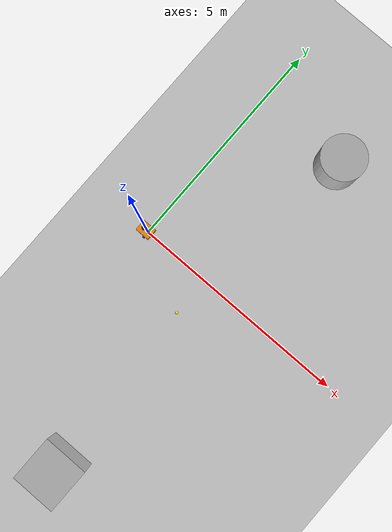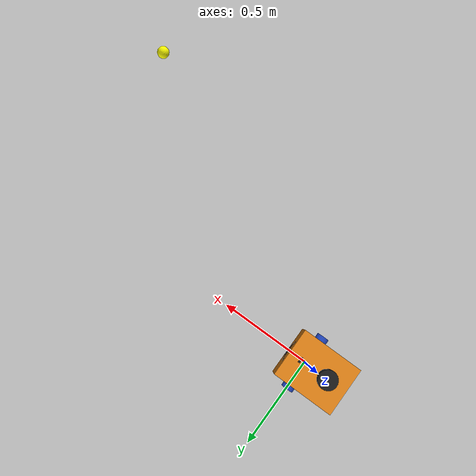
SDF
<sdf version='1.9'>
  <world name='empty'>
    <physics name='1ms' type='ignored'>
      <max_step_size>0.001</max_step_size>
      <real_time_factor>1</real_time_factor>
      <real_time_update_rate>1000</real_time_update_rate>
    </physics>
    <plugin name='gz::sim::systems::Physics' filename='gz-sim-physics-system'/>
    <plugin name='gz::sim::systems::UserCommands' filename='gz-sim-user-commands-system'/>
    <plugin name='gz::sim::systems::SceneBroadcaster' filename='gz-sim-scene-broadcaster-system'/>
    <plugin name='gz::sim::systems::Sensors' filename='gz-sim-sensors-system'>
      <render_engine>ogre2</render_engine>
    </plugin>
    <plugin name='gz::sim::systems::Contact' filename='gz-sim-contact-system'/>
    <gravity>0 0 -9.8</gravity>
    <magnetic_field>6e-06 2.3e-05 -4.2e-05</magnetic_field>
    <atmosphere type='adiabatic'/>
    <scene>
      <ambient>0.4 0.4 0.4 1</ambient>
      <background>0.7 0.7 0.7 1</background>
      <shadows>true</shadows>
    </scene>
    <model name='ground_plane'>
      <static>true</static>
      <link name='link'>
        <collision name='collision'>
          <geometry>
            <plane>
              <normal>0 0 1</normal>
              <size>100 100</size>
            </plane>
          </geometry>
          <surface>
            <friction>
              <ode/>
            </friction>
            <bounce/>
            <contact/>
          </surface>
        </collision>
        <visual name='visual'>
          <geometry>
            <plane>
              <normal>0 0 1</normal>
              <size>100 100</size>
            </plane>
          </geometry>
          <material>
            <ambient>0.8 0.8 0.8 1</ambient>
            <diffuse>0.8 0.8 0.8 1</diffuse>
            <specular>0.8 0.8 0.8 1</specular>
          </material>
        </visual>
        <pose>0 0 0 0 -0 0</pose>
        <inertial>
          <pose>0 0 0 0 -0 0</pose>
          <mass>1</mass>
          <inertia>
            <ixx>1</ixx>
            <ixy>0</ixy>
            <ixz>0</ixz>
            <iyy>1</iyy>
            <iyz>0</iyz>
            <izz>1</izz>
          </inertia>
        </inertial>
        <enable_wind>false</enable_wind>
      </link>
      <pose>0 0 0 0 -0 0</pose>
      <self_collide>false</self_collide>
    </model>
    <model name='box'>
      <pose>1.80292 -4.94023 0.5 -0 0 0</pose>
      <link name='box_link'>
        <inertial>
          <inertia>
            <ixx>0.16666</ixx>
            <ixy>0</ixy>
            <ixz>0</ixz>
            <iyy>0.16666</iyy>
            <iyz>0</iyz>
            <izz>0.16666</izz>
          </inertia>
          <mass>1</mass>
          <pose>0 0 0 0 -0 0</pose>
        </inertial>
        <collision name='box_collision'>
          <geometry>
            <box>
              <size>1 1 1</size>
            </box>
          </geometry>
          <surface>
            <friction>
              <ode/>
            </friction>
            <bounce/>
            <contact/>
          </surface>
        </collision>
        <visual name='box_visual'>
          <geometry>
            <box>
              <size>1 1 1</size>
            </box>
          </geometry>
          <material>
            <ambient>0.3 0.3 0.3 1</ambient>
            <diffuse>0.7 0.7 0.7 1</diffuse>
            <specular>1 1 1 1</specular>
          </material>
        </visual>
        <pose>0 0 0 0 -0 0</pose>
        <enable_wind>false</enable_wind>
      </link>
      <static>false</static>
      <self_collide>false</self_collide>
    </model>
    <model name='cylinder'>
      <pose>2.12782 3.70295 0.499999 -0 -0 0</pose>
      <link name='cylinder_link'>
        <inertial>
          <inertia>
            <ixx>0.14580000000000001</ixx>
            <ixy>0</ixy>
            <ixz>0</ixz>
            <iyy>0.14580000000000001</iyy>
            <iyz>0</iyz>
            <izz>0.125</izz>
          </inertia>
          <mass>1</mass>
          <pose>0 0 0 0 -0 0</pose>
        </inertial>
        <collision name='cylinder_collision'>
          <geometry>
            <cylinder>
              <radius>0.5</radius>
              <length>1</length>
            </cylinder>
          </geometry>
          <surface>
            <friction>
              <ode/>
            </friction>
            <bounce/>
            <contact/>
          </surface>
        </collision>
        <visual name='cylinder_visual'>
          <geometry>
            <cylinder>
              <radius>0.5</radius>
              <length>1</length>
            </cylinder>
          </geometry>
          <material>
            <ambient>0.3 0.3 0.3 1</ambient>
            <diffuse>0.7 0.7 0.7 1</diffuse>
            <specular>1 1 1 1</specular>
          </material>
        </visual>
        <pose>0 0 0 0 -0 0</pose>
        <enable_wind>false</enable_wind>
      </link>
      <static>false</static>
      <self_collide>false</self_collide>
    </model>
    <model name='sphere'>
      <pose>1.58291 -0.900811 0.033 0 -0 0</pose>
      <link name='sphere_link'>
        <inertial>
          <inertia>
            <ixx>0.10000000000000001</ixx>
            <ixy>0</ixy>
            <ixz>0</ixz>
            <iyy>0.10000000000000001</iyy>
            <iyz>0</iyz>
            <izz>0.10000000000000001</izz>
          </inertia>
          <mass>1</mass>
          <pose>0 0 0 0 -0 0</pose>
        </inertial>
        <collision name='sphere_collision'>
          <geometry>
            <sphere>
              <radius>0.033000000000000002</radius>
            </sphere>
          </geometry>
          <surface>
            <friction>
              <ode/>
            </friction>
            <bounce/>
            <contact/>
          </surface>
        </collision>
        <visual name='sphere_visual'>
          <geometry>
            <sphere>
              <radius>0.033000000000000002</radius>
            </sphere>
          </geometry>
          <material>
            <ambient>0.8 0.8 0.1 1</ambient>
            <diffuse>1.0 1.0 0.0 1</diffuse>
            <specular>0.5 0.5 0.5 1</specular>
          </material>
        </visual>
        <pose>0 0 0 0 -0 0</pose>
        <enable_wind>false</enable_wind>
      </link>
      <static>false</static>
      <self_collide>false</self_collide>
    </model>
    <model name='my_bot'>
      <link name='base_link'>
        <inertial>
          <pose>-0.067475 0 0.081098 0 -0 0</pose>
          <mass>0.60999999999999999</mass>
          <inertia>
            <ixx>0.0056100300000000002</ixx>
            <ixy>0</ixy>
            <ixz>0.00045381099999999998</ixz>
            <iyy>0.0076034800000000001</iyy>
            <iyz>0</iyz>
            <izz>0.0079709299999999993</izz>
          </inertia>
        </inertial>
        <collision name='base_link_fixed_joint_lump__chassis_collision'>
          <pose>-0.0585 0 0.059 0 0 0</pose>
          <geometry>
            <box>
              <size>0.335 0.265 0.138</size>
            </box>
          </geometry>
          <surface>
            <contact>
              <ode/>
            </contact>
            <friction>
              <ode/>
            </friction>
            <bounce/>
          </surface>
        </collision>
        <collision name='base_link_fixed_joint_lump__caster_wheel_collision_1'>
          <pose>-0.151 0 -0.023 0 0 0</pose>
          <geometry>
            <sphere>
              <radius>0.01</radius>
            </sphere>
          </geometry>
          <surface>
            <contact>
              <ode/>
            </contact>
            <friction>
              <ode>
                <mu>0.001</mu>
                <mu2>0.001</mu2>
              </ode>
            </friction>
            <bounce/>
          </surface>
        </collision>
        <collision name='base_link_fixed_joint_lump__laser_frame_collision_2'>
          <pose>-0.104 0 0.202 0 0 0</pose>
          <geometry>
            <cylinder>
              <length>0.040000000000000001</length>
              <radius>0.050000000000000003</radius>
            </cylinder>
          </geometry>
          <surface>
            <contact>
              <ode/>
            </contact>
            <friction>
              <ode/>
            </friction>
            <bounce/>
          </surface>
        </collision>
        <visual name='base_link_fixed_joint_lump__chassis_visual'>
          <pose>-0.0585 0 0.059 0 0 0</pose>
          <geometry>
            <box>
              <size>0.335 0.265 0.138</size>
            </box>
          </geometry>
          <material>
            <script>
              <name>Gazebo/Orange</name>
              <uri>file://media/materials/scripts/gazebo.material</uri>
            </script>
            <diffuse>1 0.375 0.125 1</diffuse>
            <ambient>1 0.375 0.125 1</ambient>
          </material>
        </visual>
        <visual name='base_link_fixed_joint_lump__camera_link_visual_1'>
          <pose>0.05000000000000002 0 0.171 0 0.18 0</pose>
          <geometry>
            <box>
              <size>0.01 0.03 0.03</size>
            </box>
          </geometry>
          <material>
            <script>
              <name>Gazebo/Black</name>
              <uri>file://media/materials/scripts/gazebo.material</uri>
            </script>
            <diffuse>0 0 0 1</diffuse>
            <ambient>0 0 0 1</ambient>
          </material>
        </visual>
        <visual name='base_link_fixed_joint_lump__camera_link_visual_2'>
          <pose>0.04104852132870881 0 0.1218078153605939 0 0.18 0</pose>
          <geometry>
            <cylinder>
              <length>0.10000000000000001</length>
              <radius>0.002</radius>
            </cylinder>
          </geometry>
          <material>
            <script>
              <name>Gazebo/Black</name>
              <uri>file://media/materials/scripts/gazebo.material</uri>
            </script>
            <diffuse>0 0 0 1</diffuse>
            <ambient>0 0 0 1</ambient>
          </material>
        </visual>
        <visual name='base_link_fixed_joint_lump__caster_wheel_visual_3'>
          <pose>-0.151 0 -0.023 0 0 0</pose>
          <geometry>
            <sphere>
              <radius>0.01</radius>
            </sphere>
          </geometry>
          <material>
            <script>
              <name>Gazebo/White</name>
              <uri>file://media/materials/scripts/gazebo.material</uri>
            </script>
            <diffuse>1 1 1 1</diffuse>
            <ambient>1 1 1 1</ambient>
          </material>
        </visual>
        <visual name='base_link_fixed_joint_lump__face_link_visual_4'>
          <pose>0.109 0.05 0.06900000000000001 0 1.570796326794897 0</pose>
          <geometry>
            <cylinder>
              <length>0.002</length>
              <radius>0.01</radius>
            </cylinder>
          </geometry>
          <material>
            <script>
              <name>Gazebo/Black</name>
              <uri>file://media/materials/scripts/gazebo.material</uri>
            </script>
            <diffuse>0 0 0 1</diffuse>
            <ambient>0 0 0 1</ambient>
          </material>
        </visual>
        <visual name='base_link_fixed_joint_lump__face_link_visual_5'>
          <pose>0.109 -0.05 0.06900000000000001 0 1.570796326794897 0</pose>
          <geometry>
            <cylinder>
              <length>0.002</length>
              <radius>0.01</radius>
            </cylinder>
          </geometry>
          <material>
            <script>
              <name>Gazebo/Black</name>
              <uri>file://media/materials/scripts/gazebo.material</uri>
            </script>
            <diffuse>0 0 0 1</diffuse>
            <ambient>0 0 0 1</ambient>
          </material>
        </visual>
        <visual name='base_link_fixed_joint_lump__face_link_visual_6'>
          <pose>0.098 0 0.059 0 1.499999999999999 0</pose>
          <geometry>
            <cylinder>
              <length>0.02</length>
              <radius>0.050000000000000003</radius>
            </cylinder>
          </geometry>
          <material>
            <script>
              <name>Gazebo/Black</name>
              <uri>file://media/materials/scripts/gazebo.material</uri>
            </script>
            <diffuse>0 0 0 1</diffuse>
            <ambient>0 0 0 1</ambient>
          </material>
        </visual>
        <visual name='base_link_fixed_joint_lump__laser_frame_visual_7'>
          <pose>-0.104 0 0.202 0 0 0</pose>
          <geometry>
            <cylinder>
              <length>0.040000000000000001</length>
              <radius>0.050000000000000003</radius>
            </cylinder>
          </geometry>
          <material>
            <script>
              <name>Gazebo/Black</name>
              <uri>file://media/materials/scripts/gazebo.material</uri>
            </script>
            <diffuse>0 0 0 1</diffuse>
            <ambient>0 0 0 1</ambient>
          </material>
        </visual>
        <visual name='base_link_fixed_joint_lump__laser_frame_visual_8'>
          <pose>-0.104 0 0.152 0 0 0</pose>
          <geometry>
            <cylinder>
              <length>0.10000000000000001</length>
              <radius>0.01</radius>
            </cylinder>
          </geometry>
          <material>
            <script>
              <name>Gazebo/Black</name>
              <uri>file://media/materials/scripts/gazebo.material</uri>
            </script>
            <diffuse>0 0 0 1</diffuse>
            <ambient>0 0 0 1</ambient>
          </material>
        </visual>
        <sensor name='camera' type='camera'>
          <pose>0.05 0 0.171 0 0.18 0</pose>
          <topic>camera/image_raw</topic>
          <update_rate>10</update_rate>
          <enable_metrics>false</enable_metrics>
          <camera name='__default__'>
            <pose>0 0 0 0 -0 0</pose>
            <horizontal_fov>1.089</horizontal_fov>
            <image>
              <width>640</width>
              <height>480</height>
              <format>RGB_INT8</format>
              <anti_aliasing>4</anti_aliasing>
            </image>
            <camera_info_topic>camera/camera_info</camera_info_topic>
            <trigger_topic></trigger_topic>
            <triggered>false</triggered>
            <clip>
              <near>0.050000000000000003</near>
              <far>8</far>
            </clip>
            <save enabled='false'>
              <path>__default__</path>
            </save>
            <visibility_mask>4294967295</visibility_mask>
            <noise>
              <type>none</type>
              <mean>0</mean>
              <stddev>0</stddev>
            </noise>
            <distortion>
              <k1>0</k1>
              <k2>0</k2>
              <k3>0</k3>
              <p1>0</p1>
              <p2>0</p2>
              <center>0.5 0.5</center>
            </distortion>
            <lens>
              <type>stereographic</type>
              <scale_to_hfov>true</scale_to_hfov>
              <cutoff_angle>1.5708</cutoff_angle>
              <env_texture_size>256</env_texture_size>
            </lens>
            <optical_frame_id></optical_frame_id>
          </camera>
        </sensor>
        <sensor name='laser' type='gpu_lidar'>
          <pose>-0.104 0 0.202 0 -0 0</pose>
          <topic>scan</topic>
          <update_rate>10</update_rate>
          <enable_metrics>false</enable_metrics>
          <lidar>
            <scan>
              <horizontal>
                <samples>360</samples>
                <resolution>1</resolution>
                <min_angle>-3.1400000000000001</min_angle>
                <max_angle>3.1400000000000001</max_angle>
              </horizontal>
              <vertical>
                <samples>1</samples>
                <min_angle>0</min_angle>
                <max_angle>0</max_angle>
                <resolution>1</resolution>
              </vertical>
            </scan>
            <range>
              <min>0.29999999999999999</min>
              <max>12</max>
              <resolution>0</resolution>
            </range>
            <noise>
              <type>none</type>
              <mean>0</mean>
              <stddev>0</stddev>
            </noise>
            <visibility_mask>4294967295</visibility_mask>
          </lidar>
        </sensor>
        <pose>0 0 0 0 -0 0</pose>
        <enable_wind>false</enable_wind>
      </link>
      <joint name='left_wheel_joint' type='revolute'>
        <pose>0 -0 0 0 -0 0</pose>
        <parent>base_link</parent>
        <child>left_wheel</child>
        <axis>
          <xyz>0 0 1</xyz>
          <limit>
            <lower>-10000000000000000</lower>
            <upper>10000000000000000</upper>
            <effort>inf</effort>
            <velocity>inf</velocity>
            <stiffness>100000000</stiffness>
            <dissipation>1</dissipation>
          </limit>
          <dynamics>
            <spring_reference>0</spring_reference>
            <spring_stiffness>0</spring_stiffness>
            <damping>0</damping>
            <friction>0</friction>
          </dynamics>
        </axis>
      </joint>
      <link name='left_wheel'>
        <pose>0 0.1485 0 -1.5708 -0 -0</pose>
        <inertial>
          <pose>0 0 0 0 -0 0</pose>
          <mass>0.050000000000000003</mass>
          <inertia>
            <ixx>1.6429199999999998e-05</ixx>
            <ixy>0</ixy>
            <ixz>0</ixz>
            <iyy>1.6429199999999998e-05</iyy>
            <iyz>0</iyz>
            <izz>2.7225000000000001e-05</izz>
          </inertia>
        </inertial>
        <collision name='left_wheel_collision'>
          <pose>0 0 0 0 0 0</pose>
          <geometry>
            <sphere>
              <radius>0.033000000000000002</radius>
            </sphere>
          </geometry>
          <surface>
            <contact>
              <ode/>
            </contact>
            <friction>
              <ode/>
            </friction>
            <bounce/>
          </surface>
        </collision>
        <visual name='left_wheel_visual'>
          <pose>0 0 0 0 0 0</pose>
          <geometry>
            <cylinder>
              <length>0.025999999999999999</length>
              <radius>0.033000000000000002</radius>
            </cylinder>
          </geometry>
          <material>
            <script>
              <name>Gazebo/Blue</name>
              <uri>file://media/materials/scripts/gazebo.material</uri>
            </script>
            <diffuse>0.25 0.25 1 1</diffuse>
            <ambient>0.25 0.25 1 1</ambient>
          </material>
        </visual>
        <enable_wind>false</enable_wind>
      </link>
      <joint name='right_wheel_joint' type='revolute'>
        <pose>0 0 0 0 -0 0</pose>
        <parent>base_link</parent>
        <child>right_wheel</child>
        <axis>
          <xyz>0 0 -1</xyz>
          <limit>
            <lower>-10000000000000000</lower>
            <upper>10000000000000000</upper>
            <effort>inf</effort>
            <velocity>inf</velocity>
            <stiffness>100000000</stiffness>
            <dissipation>1</dissipation>
          </limit>
          <dynamics>
            <spring_reference>0</spring_reference>
            <spring_stiffness>0</spring_stiffness>
            <damping>0</damping>
            <friction>0</friction>
          </dynamics>
        </axis>
      </joint>
      <link name='right_wheel'>
        <pose>0 -0.1485 0 1.5708 -0 0</pose>
        <inertial>
          <pose>0 0 0 0 -0 0</pose>
          <mass>0.050000000000000003</mass>
          <inertia>
            <ixx>1.6429199999999998e-05</ixx>
            <ixy>0</ixy>
            <ixz>0</ixz>
            <iyy>1.6429199999999998e-05</iyy>
            <iyz>0</iyz>
            <izz>2.7225000000000001e-05</izz>
          </inertia>
        </inertial>
        <collision name='right_wheel_collision'>
          <pose>0 0 0 0 0 0</pose>
          <geometry>
            <sphere>
              <radius>0.033000000000000002</radius>
            </sphere>
          </geometry>
          <surface>
            <contact>
              <ode/>
            </contact>
            <friction>
              <ode/>
            </friction>
            <bounce/>
          </surface>
        </collision>
        <visual name='right_wheel_visual'>
          <pose>0 0 0 0 0 0</pose>
          <geometry>
            <cylinder>
              <length>0.025999999999999999</length>
              <radius>0.033000000000000002</radius>
            </cylinder>
          </geometry>
          <material>
            <script>
              <name>Gazebo/Blue</name>
              <uri>file://media/materials/scripts/gazebo.material</uri>
            </script>
            <diffuse>0.25 0.25 1 1</diffuse>
            <ambient>0.25 0.25 1 1</ambient>
          </material>
        </visual>
        <enable_wind>false</enable_wind>
      </link>
      <plugin name='gz_ros2_control::GazeboSimROS2ControlPlugin' filename='libgz_ros2_control-system.so'>
        <parameters>/home/engenheiro/Desktop/robot_ws/install/articubot_one/share/articubot_one/config/my_controllers.yaml</parameters>
        <parameters>/home/engenheiro/Desktop/robot_ws/install/articubot_one/share/articubot_one/config/gaz_ros2_ctl_use_sim.yaml</parameters>
      </plugin>
      <frame name='base_footprint_joint' attached_to='base_link'>
        <pose>0 0 0 0 -0 0</pose>
      </frame>
      <frame name='base_footprint' attached_to='base_footprint_joint'/>
      <frame name='camera_optical_joint' attached_to='camera_link'>
        <pose>0 0 0 -1.5708 -0 -1.5708</pose>
      </frame>
      <frame name='camera_link_optical' attached_to='camera_optical_joint'/>
      <frame name='camera_joint' attached_to='chassis'>
        <pose>0.276 0 0.181 0 0.18 0</pose>
      </frame>
      <frame name='camera_link' attached_to='camera_joint'/>
      <frame name='caster_wheel_joint' attached_to='chassis'>
        <pose>0.075 0 -0.013 0 -0 0</pose>
      </frame>
      <frame name='caster_wheel' attached_to='caster_wheel_joint'/>
      <frame name='face_joint' attached_to='chassis'>
        <pose>0.335 0 0.069 0 -0 0</pose>
      </frame>
      <frame name='face_link' attached_to='face_joint'/>
      <frame name='laser_joint' attached_to='chassis'>
        <pose>0.122 0 0.212 0 -0 0</pose>
      </frame>
      <frame name='laser_frame' attached_to='laser_joint'/>
      <frame name='chassis_joint' attached_to='base_link'>
        <pose>-0.226 0 -0.01 0 -0 0</pose>
      </frame>
      <frame name='chassis' attached_to='chassis_joint'/>
      <pose>-0 -0 0.033 0 0 -0</pose>
      <static>false</static>
      <self_collide>false</self_collide>
    </model>
    <light name='sun' type='directional'>
      <pose>0 0 10 0 -0 0</pose>
      <cast_shadows>true</cast_shadows>
      <intensity>1</intensity>
      <direction>-0.5 0.1 -0.9</direction>
      <diffuse>0.8 0.8 0.8 1</diffuse>
      <specular>0.2 0.2 0.2 1</specular>
      <attenuation>
        <range>1000</range>
        <linear>0.01</linear>
        <constant>0.90000000000000002</constant>
        <quadratic>0.001</quadratic>
      </attenuation>
      <spot>
        <inner_angle>0</inner_angle>
        <outer_angle>0</outer_angle>
        <falloff>0</falloff>
      </spot>
    </light>
  </world>
</sdf>
